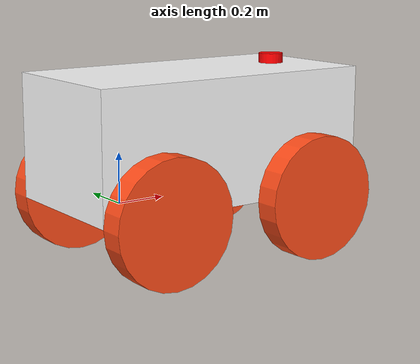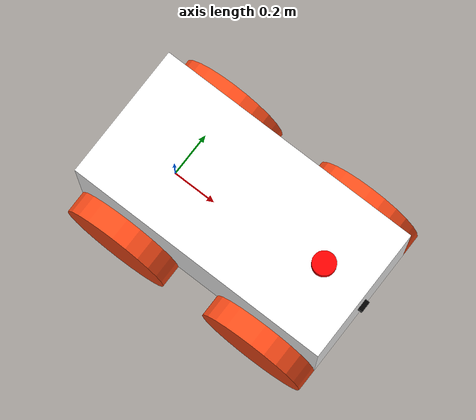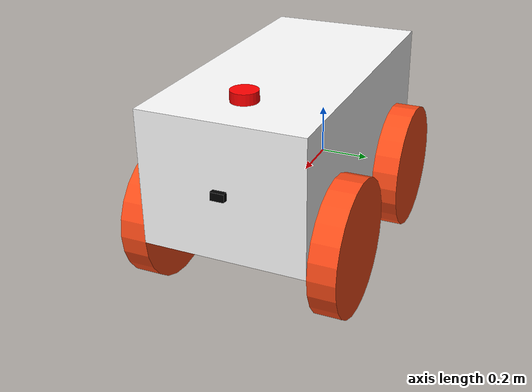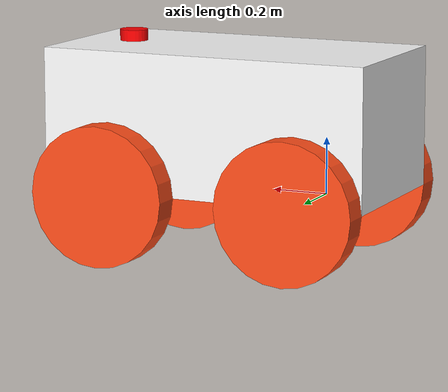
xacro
<?xml version="1.0"?>
<robot xmlns:xacro="http://www.ros.org/wiki/xacro"  name="robot">

    <xacro:include filename="robot_core.xacro" />

    <xacro:include filename="ros2_control.xacro"/>

    <xacro:include filename="lidar.xacro"/>

    <xacro:include filename="depth_camera.xacro"/>

</robot>

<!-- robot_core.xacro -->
<robot xmlns:xacro="http://www.ros.org/wiki/xacro" >

    <xacro:include filename="inertial_macros.xacro"/>

    <!-- friction constant -->
    <xacro:property name="friction_constant" value="0.2"/>

    <material name="white">
        <color rgba="1 1 1 1"/>
    </material>

    <material name="orange">
        <color rgba="1 0.3 0.1 1"/>
    </material>

    <material name="blue">
        <color rgba="0.2 0.2 1 1"/>
    </material>

    <material name="black">
        <color rgba="0 0 0 1"/>
    </material>

    <material name="red">
        <color rgba="1 0 0 1"/>
    </material>

<!-- BASE LINK-->
    <link name="base_link">

    </link>

<!-- CHASSIS LINK-->
    <joint name="chassis_joint" type="fixed">
        <parent link="base_link"/>
        <child link="chassis"/>
        <origin xyz="-0.25 0 0"/>
    </joint>

    <link name="chassis">
        <visual>
            <origin xyz="0.6 0 0.25"/>
            <geometry>
                <box size="1.2 0.6 0.5"/>
            </geometry>
            <material name="white"/>
        </visual>
        <collision>
            <origin xyz="0.6 0 0.25"/>
            <geometry>
                <box size="1.2 0.6 0.5"/>
            </geometry>
        </collision>
        <xacro:inertial_box mass="35" x="1.2" y="0.6" z="0.5">
            <origin xyz="0.6 0 0.25" rpy="0 0 0"/>
        </xacro:inertial_box>
    </link>

    <gazebo reference="chassis">
        <material>Gazebo/White</material>
    </gazebo>

<!-- BACK LEFT WHEEL LINK -->
    <joint name="lb_wheel_joint" type="continuous">
        <parent link="base_link"/>
        <child link="lb_wheel"/>
        <origin xyz="0 0.35 0" rpy="-${pi/2} 0 0"/>
        <axis xyz="0 0 1"/>
        <limit effort="1000" velocity="1000"/>
    </joint>

    <link name="lb_wheel">
        <visual>
            <geometry>
                <cylinder radius="0.25" length="0.1"/>
            </geometry>
            <material name="orange"/>
        </visual>
        <collision>
            <geometry>
                <cylinder radius="0.25" length="0.1"/>
            </geometry>
        </collision>
        <xacro:inertial_cylinder mass="2.5" length="0.1" radius="0.25">
            <origin xyz="0 0 0" rpy="0 0 0"/>
        </xacro:inertial_cylinder>
    </link>

    <gazebo reference="lb_wheel">
        <material>Gazebo/Orange</material>
    </gazebo>

<!-- BACK RIGHT WHEEL LINK -->
<joint name="rb_wheel_joint" type="continuous">
    <parent link="base_link"/>
    <child link="rb_wheel"/>
    <origin xyz="0 -0.35 0" rpy="${pi/2} 0 0"/>
    <axis xyz="0 0 -1"/>
    <limit effort="1000" velocity="1000"/>
</joint>

<link name="rb_wheel">
    <visual>
        <geometry>
            <cylinder radius="0.25" length="0.1"/>
        </geometry>
        <material name="orange"/>
    </visual>
    <collision>
        <geometry>
            <cylinder radius="0.25" length="0.1"/>
        </geometry>
    </collision>
    <xacro:inertial_cylinder mass="2.5" length="0.1" radius="0.25">
            <origin xyz="0 0 0" rpy="0 0 0"/>
    </xacro:inertial_cylinder>
</link>

<gazebo reference="rb_wheel">
    <material>Gazebo/Orange</material>
</gazebo>

<!-- FRONT LEFT WHEEL LINK -->
<joint name="lf_wheel_joint" type="continuous">
    <parent link="base_link"/>
    <child link="lf_wheel"/>
    <origin xyz="0.7 0.35 0" rpy="-${pi/2} 0 0"/>
    <axis xyz="0 0 1"/>
    <limit effort="1000" velocity="1000"/>
</joint>

<link name="lf_wheel">
    <visual>
        <geometry>
            <cylinder radius="0.25" length="0.1"/>
        </geometry>
        <material name="orange"/>
    </visual>
    <collision>
        <geometry>
            <cylinder radius="0.25" length="0.1"/>
        </geometry>
    </collision>
    <xacro:inertial_cylinder mass="2.5" length="0.1" radius="0.25">
            <origin xyz="0 0 0" rpy="0 0 0"/>
    </xacro:inertial_cylinder>
</link>

<gazebo reference="lf_wheel">
    <material>Gazebo/Orange</material>
</gazebo>

<!-- FRONT RIGHT WHEEL LINK -->
<joint name="rf_wheel_joint" type="continuous">
    <parent link="base_link"/>
    <child link="rf_wheel"/>
    <origin xyz="0.7 -0.35 0" rpy="${pi/2} 0 0"/>
    <axis xyz="0 0 -1"/>
    <limit effort="1000" velocity="1000"/>
</joint>

<link name="rf_wheel">
    <visual>
        <geometry>
            <cylinder radius="0.25" length="0.1"/>
        </geometry>
        <material name="orange"/>
    </visual>
    <collision>
        <geometry>
            <cylinder radius="0.25" length="0.1"/>
        </geometry>
    </collision>
    <xacro:inertial_cylinder mass="2.5" length="0.1" radius="0.25">
            <origin xyz="0 0 0" rpy="0 0 0"/>
    </xacro:inertial_cylinder>
</link>

<gazebo reference="rf_wheel">
    <material>Gazebo/Orange</material>
</gazebo>

</robot>

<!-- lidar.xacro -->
<robot xmlns:xacro="http://www.ros.org/wiki/xacro">

    <!-- LIDAR JOINT -->
    <joint name="laser_joint" type="fixed">
        <parent link="chassis"/>
        <child link="laser_frame"/>
        <origin xyz="1.0 0 0.52" rpy="0 0 0"/>
    </joint>

    <link name="laser_frame">
        <visual>
            <geometry>
                <cylinder radius="0.05" length="0.04"/>
            </geometry>
            <material name="red"/>
        </visual>
        <collision>
            <geometry>
                <cylinder radius="0.05" length="0.04"/>
            </geometry>
        </collision>
        <xacro:inertial_cylinder mass="0.1" length="0.04" radius="0.05">
            <origin xyz="0 0 0" rpy="0 0 0"/>
        </xacro:inertial_cylinder>
    </link>

    <gazebo reference="laser_frame">
        <material>Gazebo/Red</material>

        <sensor name="laser" type="ray">
            <pose> 0 0 0 0 0 0 </pose>
            <visualize>false</visualize>
            <update_rate>10</update_rate>
            <ray>
                <scan>
                    <horizontal>
                        <samples>360</samples>
                        <min_angle>-3.14</min_angle>
                        <max_angle>3.14</max_angle>
                    </horizontal>
                </scan>
                <range>
                    <min>0.3</min>
                    <max>12</max>
                </range>
            </ray>
            <plugin name="laser_controller" filename="libgazebo_ros_ray_sensor.so">
                <ros>
                    <argument>~/out:=scan</argument>
                </ros>
                <output_type>sensor_msgs/LaserScan</output_type>
                <frame_name>laser_frame</frame_name>
            </plugin>
        </sensor>
    </gazebo>

</robot>

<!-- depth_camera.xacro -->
<robot xmlns:xacro="http://www.ros.org/wiki/xacro">

    <!-- CAMERA JOINT -->
    <joint name="camera_joint" type="fixed">
        <parent link="chassis"/>
        <child link="camera_link"/>
        <origin xyz="1.21 0 0.25" rpy="0 0 0"/>
    </joint>

    <link name="camera_link">
        <visual>
            <geometry>
                <box size="0.02 0.05 0.03" length="0.04"/>
            </geometry>
            <material name="black"/>
        </visual>
    </link>

    <!-- CAMERA OPTICAL JOINT -->
    <joint name="camera_optical_joint" type="fixed">
        <parent link="camera_link"/>
        <child link="camera_link_optical"/>
        <origin xyz="0 0 0" rpy="${-pi/2} 0 ${-pi/2}"/>
    </joint>

    <link name="camera_link_optical"></link>

    <gazebo reference="camera_link">
        <material>Gazebo/Black</material>

        <sensor name="camera" type="depth">
            <pose> 0 0 0 0 0 0 </pose>
            <visualize>false</visualize>
            <update_rate>10</update_rate>
            <camera>
                <horizontal_fov>1.089</horizontal_fov>
                <image>
                    <format>B8G8R8</format>
                    <width>640</width>
                    <height>480</height>
                </image>
                <clip>
                    <near>0.05</near>
                    <far>12.0</far>
                </clip>
            </camera>
            <plugin name="camera_controller" filename="libgazebo_ros_camera.so">
                <frame_name>camera_link_optical</frame_name>
                <min_depth>0.1</min_depth>
                <max_depth>10.0</max_depth>
            </plugin>
        </sensor>
    </gazebo>

</robot>
